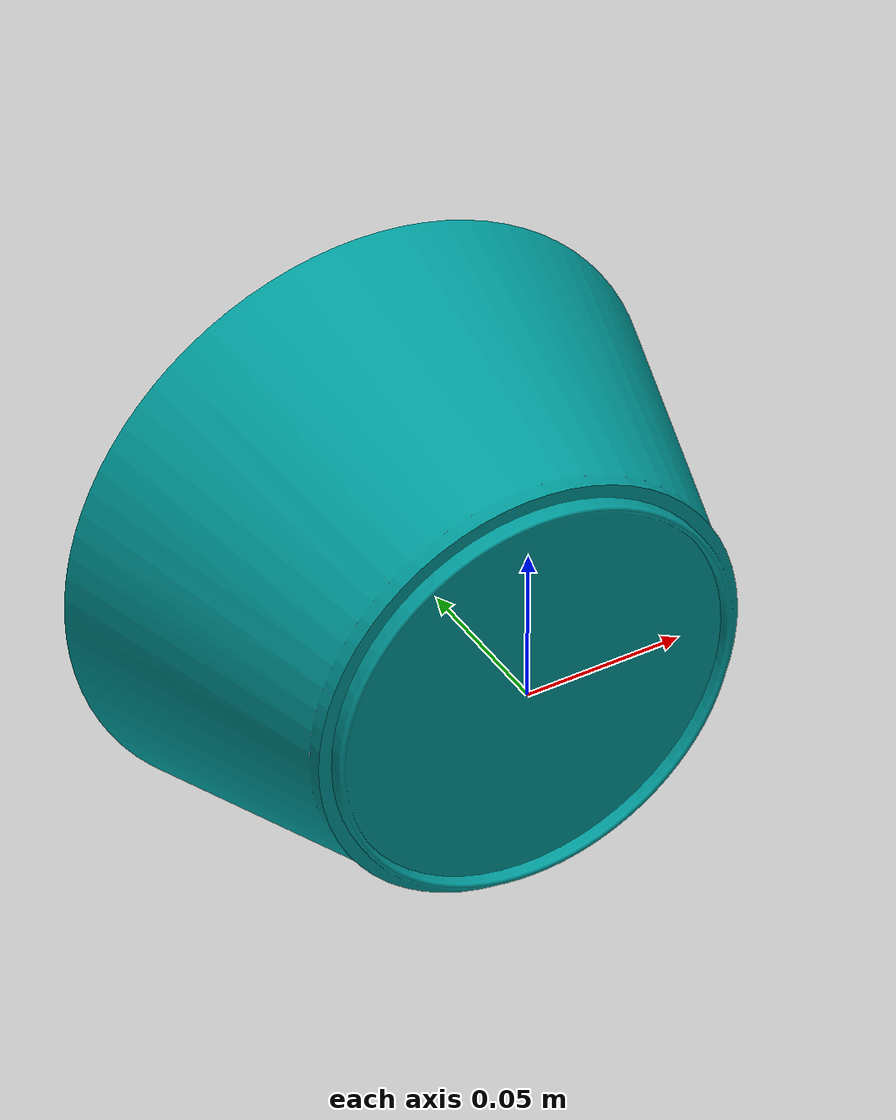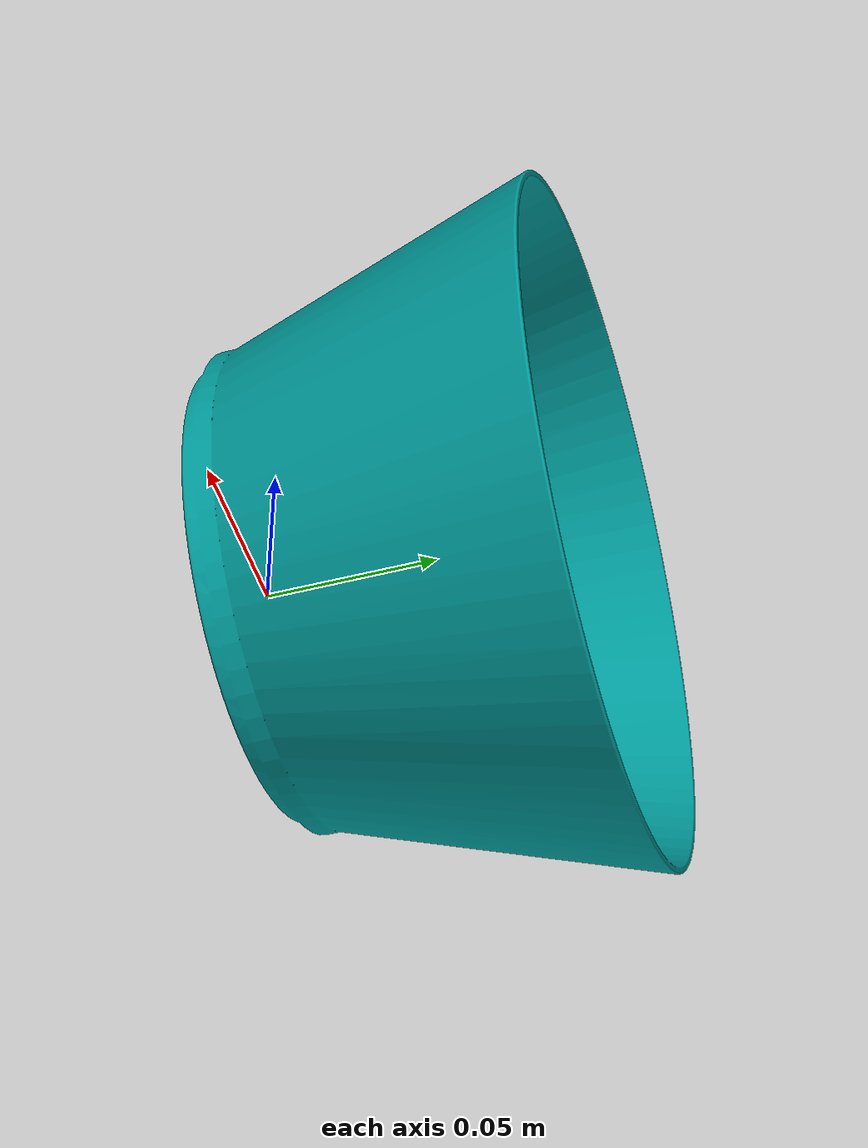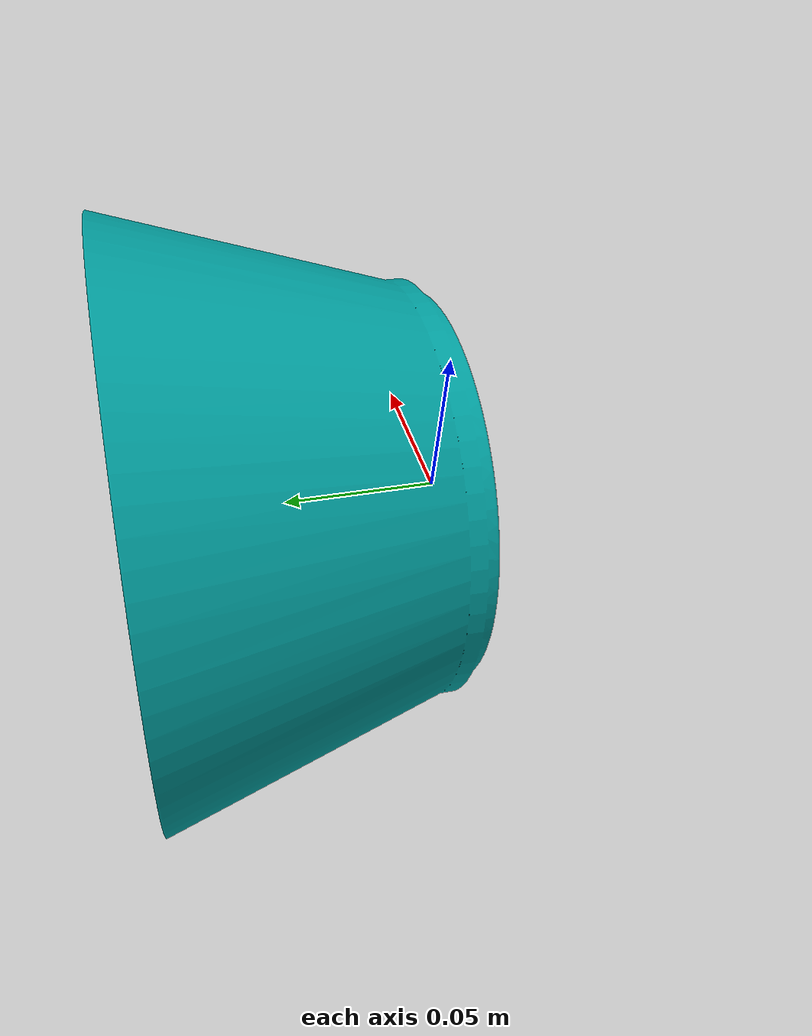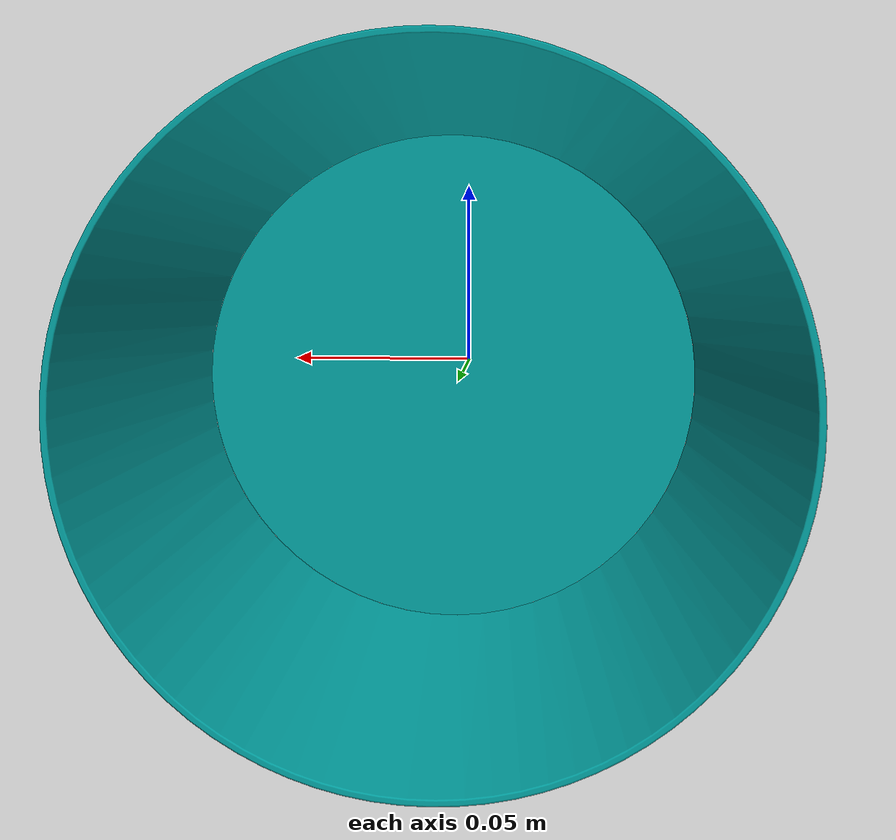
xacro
<?xml version="1.0" encoding="UTF-8"?>
<robot xmlns:xacro="http://ros.org/wiki/xacro" name="bowl">

  <link name="bowl_link">
    <inertial>
      <origin xyz="0 0 0" rpy="0 1.57 0"/>
      <mass value="100.0"/>
      <inertia ixx="1.0"  ixy="0"  ixz="0" iyy="1.0" iyz="0" izz="1.0" />
    </inertial>
    <visual>
      <origin xyz="0 0 0" rpy="0 1.57 0" />
      <geometry>
	<mesh filename="package://ll4ma_robots_description/meshes/environment/bowl.stl"
	      scale="0.002 0.002 0.002"/>
      </geometry>
      <material name="green">
	<color rgba="0 0.6 0.6 1"/>
      </material>
    </visual>
    <collision>
      <origin xyz="0 0 0" rpy="0 1.57 0" />
      <geometry>
	<mesh filename="package://ll4ma_robots_description/meshes/environment/bowl.stl"
	      scale="0.002 0.002 0.002"/>
      </geometry>
    </collision>
  </link>

  <gazebo reference="bowl_link">
    <mu1>0.01</mu1> <!-- TEMPORARY can make higher to be more like a table -->
    <mu2>0.01</mu2>

  </gazebo>

</robot>
